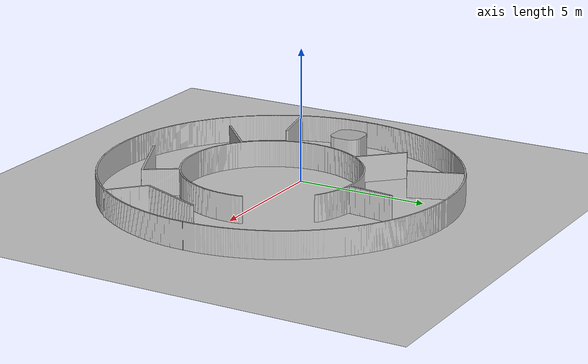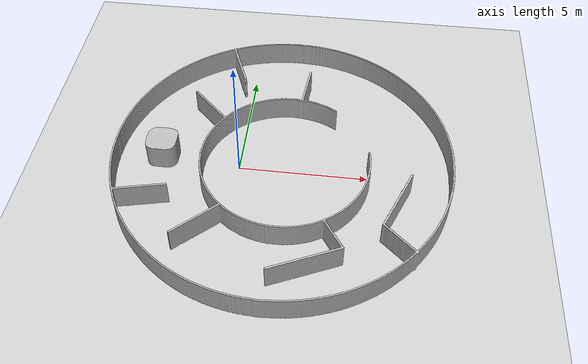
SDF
<?xml version="1.0" ?>

<sdf version="1.8">
  <world name="demo">

  <physics name="3x_speed" type="ode">
      <real_time_factor>3.0</real_time_factor>
      <real_time_update_rate>3000</real_time_update_rate>
      <max_step_size>0.001</max_step_size>
    </physics>

    <plugin
      filename="gz-sim-physics-system"
      name="gz::sim::systems::Physics">
    </plugin>
    <plugin
      filename="gz-sim-sensors-system"
      name="gz::sim::systems::Sensors">
      <render_engine>ogre2</render_engine>
    </plugin>
    <plugin
      filename="gz-sim-scene-broadcaster-system"
      name="gz::sim::systems::SceneBroadcaster">
    </plugin>
    <plugin
      filename="gz-sim-user-commands-system"
      name="gz::sim::systems::UserCommands">
    </plugin>

    <light name="sun" type="directional">
      <cast_shadows>true</cast_shadows>
      <pose>0 0 10 0 0 0</pose>
      <diffuse>0.8 0.8 0.8 1</diffuse>
      <specular>0.2 0.2 0.2 1</specular>
      <attenuation>
        <range>1000</range>
        <constant>0.9</constant>
        <linear>0.01</linear>
        <quadratic>0.001</quadratic>
      </attenuation>
      <direction>-0.5 0.1 -0.9</direction>
    </light>

    <model name="ground_plane">
      <static>true</static>
      <link name="link">
        <collision name="collision">
          <geometry>
            <plane>
              <normal>0 0 1</normal>
              <size>100 100</size>
            </plane>
          </geometry>
        </collision>
        <visual name="visual">
          <geometry>
            <plane>
              <normal>0 0 1</normal>
              <size>100 100</size>
            </plane>
          </geometry>
          <material>
            <ambient>0.8 0.8 0.8 1</ambient>
            <diffuse>0.8 0.8 0.8 1</diffuse>
            <specular>0.8 0.8 0.8 1</specular>
          </material>
        </visual>
      </link>
    </model>

    <model name="circle-maze">
      <pose>-10 8.5 0 0 0 0</pose>
      <static>true</static>
      <link name="map_link">
        <collision name="collision">
          <geometry>
            <mesh>
              <uri>circle-maze.stl</uri>
              <scale>1 1 1</scale>
            </mesh>
          </geometry>
        </collision>
        <visual name="visual">
          <geometry>
            <mesh>
              <uri>circle-maze.stl</uri>
              <scale>1 1 1</scale>
            </mesh>
          </geometry>
        </visual>
      </link>
    </model>
  </world>
</sdf>
